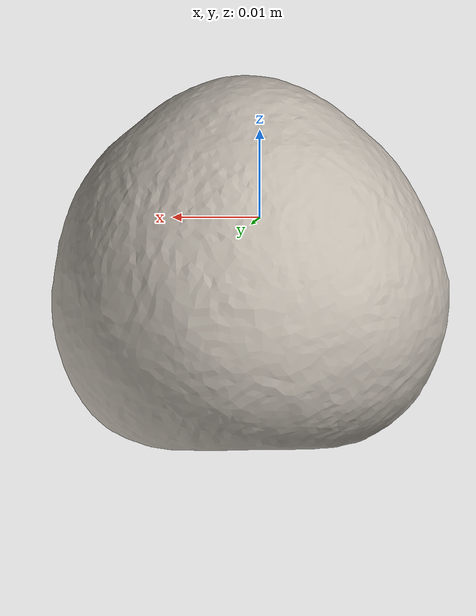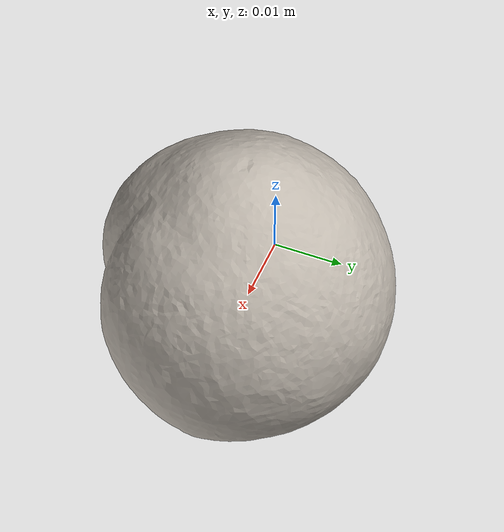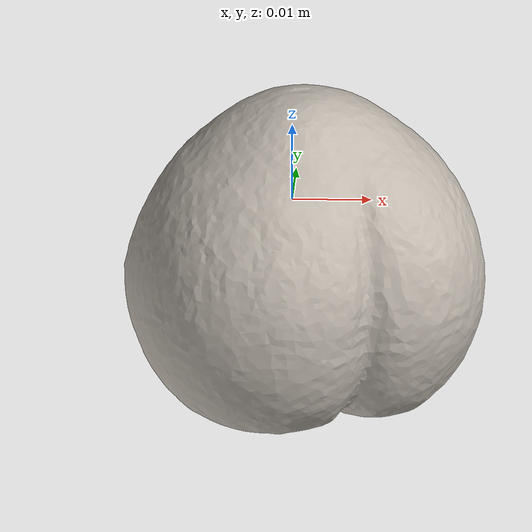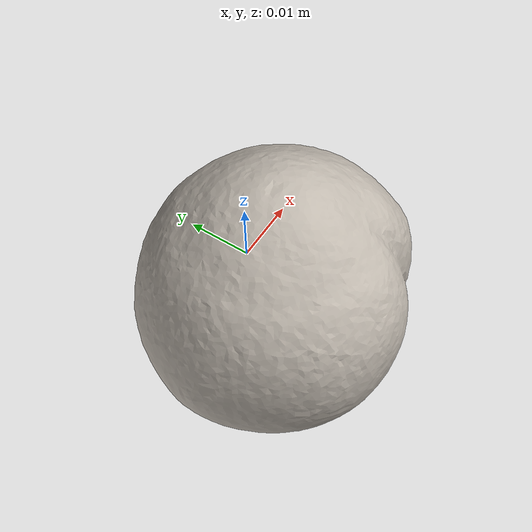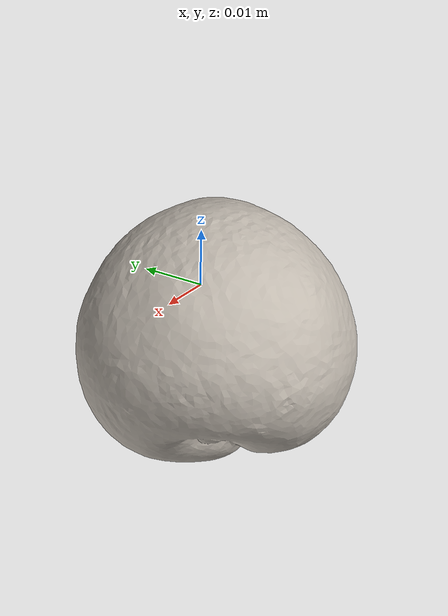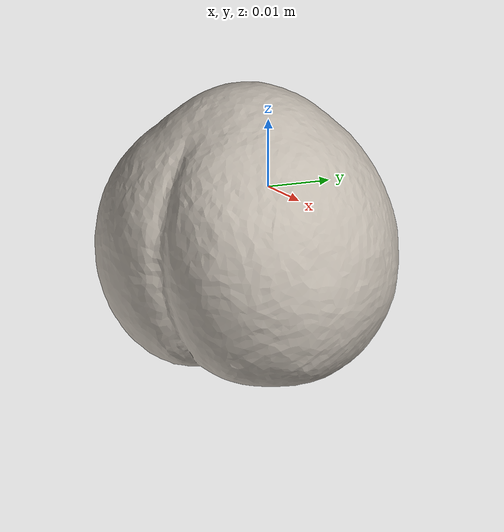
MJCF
<mujoco model="bread">
  <asset>
    <mesh file="nontextured.stl" name="obj_mesh" scale="0.8 0.8 0.8"/>
    <texture file="../../../../../textures/bread.png" type="2d" name="tex-bread" />
    <material name="bread" reflectance="0.7" texrepeat="15 15" texture="tex-bread" texuniform="true"/>
  </asset>
  <worldbody>
    <body>
      <body name="collision">
        <geom pos="0.007818 -0.0194235 -0.026223" mesh="obj_mesh" type="mesh" solimp="0.998 0.998 0.001" solref="0.001 1" density="50" friction="0.95 0.3 0.1"  material="bread" group="1" condim="4"/>
      </body>
      <body name="visual">
        <geom pos="0.007818 -0.0194235 -0.026223" mesh="obj_mesh" type="mesh" material="bread"  conaffinity="0" contype="0"  group="0" mass="0.0001"/>
        <geom pos="0.007818 -0.0194235 -0.026223" mesh="obj_mesh" type="mesh" material="bread"  conaffinity="0" contype="0"  group="1" mass="0.0001"/>
      </body>
      <site rgba="0 0 0 0" size="0.005" pos="0 0 -0.02652" name="bottom_site"/>
      <site rgba="0 0 0 0" size="0.005" pos="0 0 0.02652" name="top_site"/>
      <site rgba="0 0 0 0" size="0.005" pos="0.028595000000000002 0.0274705 0.02652" name="horizontal_radius_site"/>
    </body>
  </worldbody>
</mujoco>
